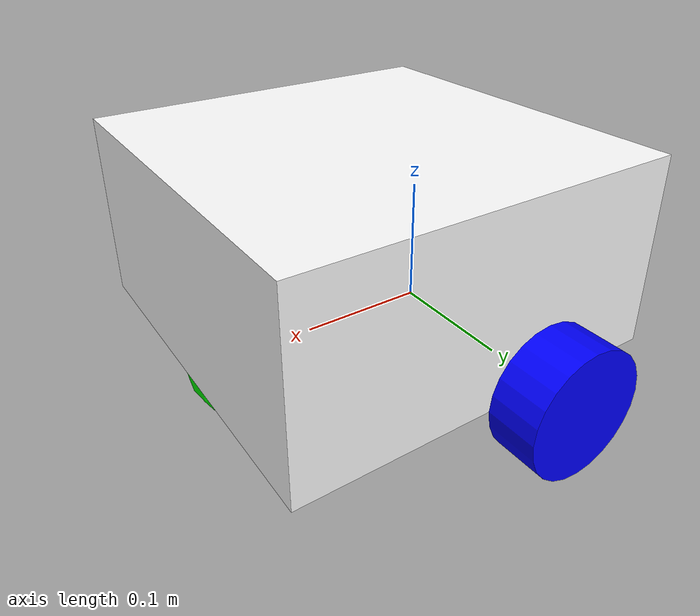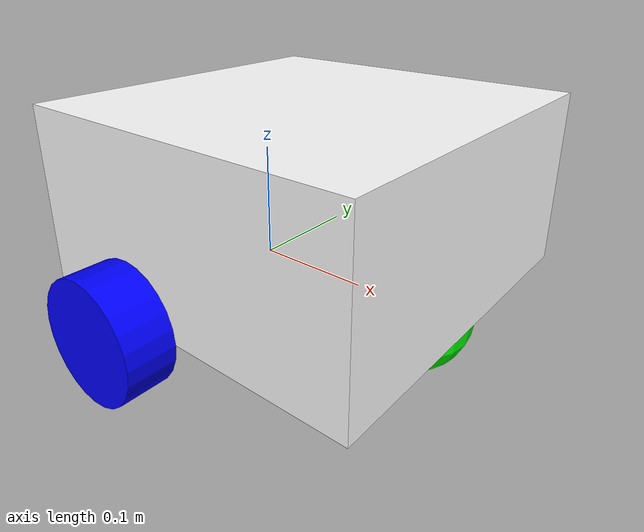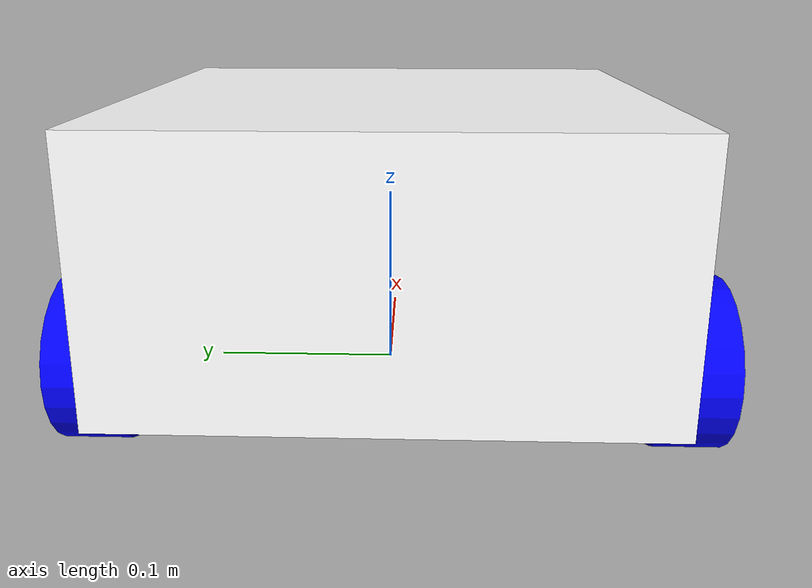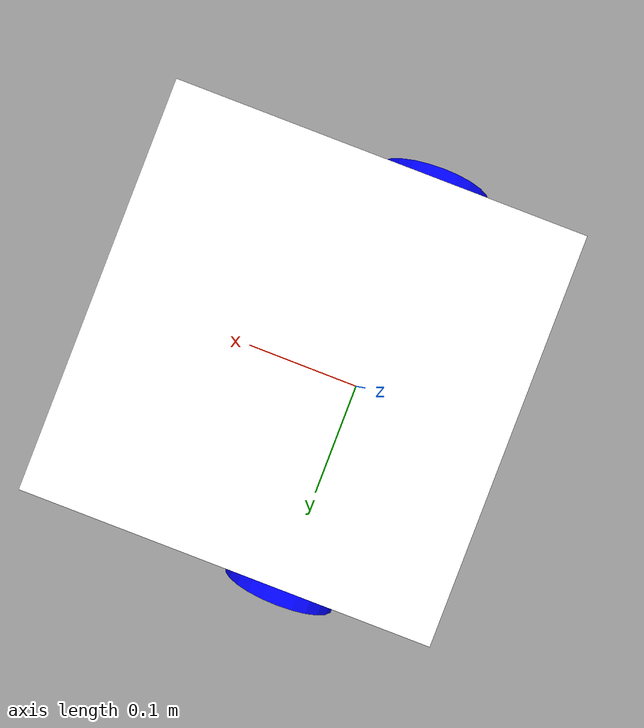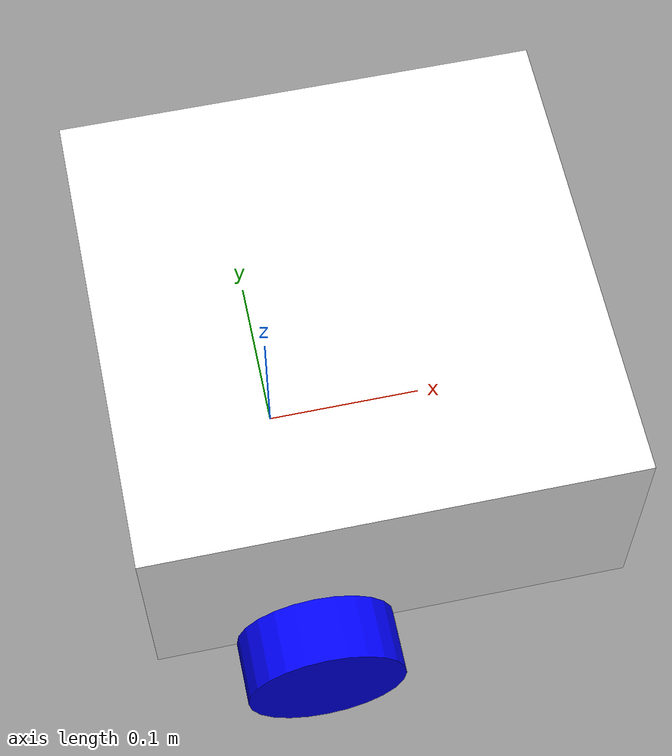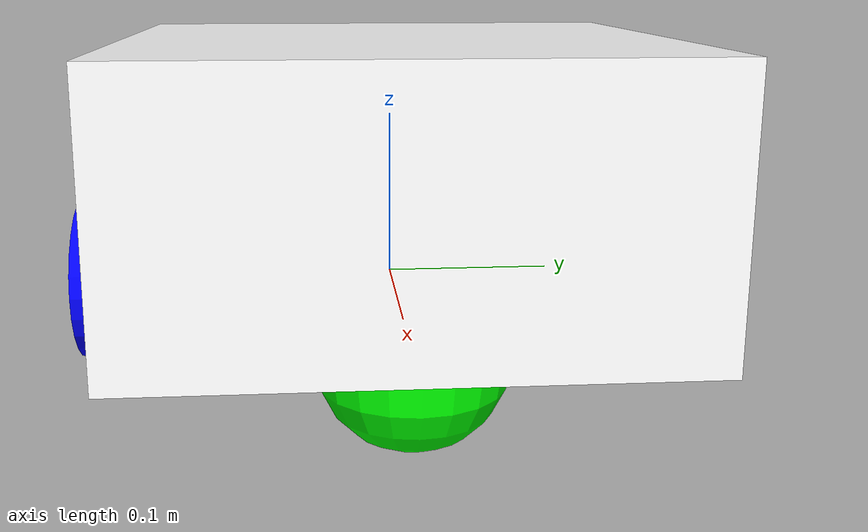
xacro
<?xml version="1.0"?>
<robot xmlns:xacro="http://www.ros.org/wiki/xacro">

    <!-- MACROS -->

    <xacro:include filename="material_macros.xacro"/>
    <xacro:include filename="inertial_macros.xacro"/>

    <!-- BASE -->

    <!-- used for center of rotation of wheels -->
    <link name="base_link"></link>

    <!-- CHASSIS -->

    <joint name="chassis_joint" type="fixed">
        <parent link="base_link"/>
        <child link="chassis"/>
        <origin xyz='-0.1 0 0'/> <!-- chassis set just behind base_link-->
    </joint>

    <xacro:property name="body_x" value="0.3"/>
    <xacro:property name="body_y" value="0.3"/>
    <xacro:property name="body_z" value="0.15"/>
    <link name="chassis">
        <visual>
            <origin xyz="${body_x/2} 0 ${body_z/2}"/> <!-- place chassis at bottom back of visual-->
            <geometry>
                <box size="${body_x} ${body_y} ${body_z}"/>
            </geometry>
            <material name="white"/>
        </visual>
        <collision>
            <origin xyz="${body_x/2} 0 ${body_z/2}"/>
            <geometry>
                <box size="${body_x} ${body_y} ${body_z}"/>
            </geometry>
        </collision>
        <xacro:inertial_box mass="0.5" x="${body_x}" y="${body_y}" z="${body_z}">
            <origin xyz="${body_x/2} 0 ${body_z/2}" rpy="0 0 0"/> <!-- same as visual.origin-->
        </xacro:inertial_box>
    </link>

    <!-- WHEELS -->

    <xacro:property name="wheel_length" value="0.04"/>
    <xacro:property name="wheel_radius" value="0.05"/>

    <!-- LEFT WHEEL -->

    <joint name="left_wheel_joint" type="continuous">
        <parent link="base_link"/>
        <child link="left_wheel"/>
        <origin xyz="0 ${body_y/2 + wheel_length/2} 0" rpy="-${pi/2} 0 0"/> <!-- by default ros cylinders are along vertical z point out, rotate sideways along -x-->
        <axis xyz="0 0 1"/> <!-- rotate forward around +z-->
    </joint>

    <link name="left_wheel">
        <visual>
            <geometry>
                <cylinder radius="${wheel_radius}" length="${wheel_length}"/>
            </geometry>
            <material name="blue"/>
        </visual>
        <collision>
            <geometry>
                <cylinder radius="${wheel_radius}" length="${wheel_length}"/>
            </geometry>
        </collision>
        <xacro:inertial_cylinder mass="0.1" radius="${wheel_radius}" length="${wheel_length}">
            <origin xyz="0 0 0" rpy="0 0 0"/>
        </xacro:inertial_cylinder>
    </link>

    <!-- RIGHT WHEEL -->

    <joint name="right_wheel_joint" type="continuous">
        <parent link="base_link"/>
        <child link="right_wheel"/>
        <origin xyz="0 -${body_y/2 + wheel_length/2} 0" rpy="${pi/2} 0 0"/> <!-- by default ros cylinders are along vertical z point out, rotate sideways along +x-->
        <axis xyz="0 0 -1"/> <!-- rotate forward around +z-->
    </joint>

    <link name="right_wheel">
        <visual>
            <geometry>
                <cylinder radius="${wheel_radius}" length="${wheel_length}"/>
            </geometry>
            <material name="blue"/>
        </visual>
        <collision>
            <geometry>
                <cylinder radius="${wheel_radius}" length="${wheel_length}"/>
            </geometry>
        </collision>
        <xacro:inertial_cylinder mass="0.1" radius="${wheel_radius}" length="${wheel_length}">
            <origin xyz="0 0 0" rpy="0 0 0"/>
        </xacro:inertial_cylinder>
    </link>

    <!-- CASTER WHEEL (frictionless hemisphere) -->

    <xacro:property name="caster_radius" value="${wheel_radius}"/>

    <joint name="caster_wheel_joint" type="fixed">
        <parent link="chassis"/>
        <child link="caster_wheel"/>
        <origin xyz="${body_x - caster_radius} 0 0"/>
    </joint>

    <link name="caster_wheel">
        <visual>
            <geometry>
                <sphere radius="${caster_radius}"/>
            </geometry>
            <material name="green"/>
        </visual>
        <collision>
            <geometry>
                <sphere radius="${caster_radius}"/>
            </geometry>
        </collision>
        <xacro:inertial_sphere mass="0.1" radius="${caster_radius}">
            <origin xyz="0 0 0" rpy="0 0 0"/>
        </xacro:inertial_sphere>
    </link>

</robot>

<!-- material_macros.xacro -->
<robot xmlns:xacro="http://www.ros.org/wiki/xacro">

    <!-- this holds robot materials -->

    <material name="white">
        <color rgba="1 1 1 1"/>
    </material>
    <material name="red">
        <color rgba="1 0 0 1"/>
    </material>
    <material name="green">
        <color rgba="0 1 0 1"/>
    </material>
    <material name="blue">
        <color rgba="0 0 1 1"/>
    </material>

</robot>

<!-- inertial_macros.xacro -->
<robot xmlns:xacro="http://www.ros.org/wiki/xacro" >

    <!-- Specify some standard inertial calculations https://en.wikipedia.org/wiki/List_of_moments_of_inertia -->
    <!-- These make use of xacro's mathematical functionality -->

    <xacro:macro name="inertial_sphere" params="mass radius *origin">
        <inertial>
            <xacro:insert_block name="origin"/>
            <mass value="${mass}" />
            <inertia ixx="${(2/5) * mass * (radius*radius)}" ixy="0.0" ixz="0.0"
                    iyy="${(2/5) * mass * (radius*radius)}" iyz="0.0"
                    izz="${(2/5) * mass * (radius*radius)}" />
        </inertial>
    </xacro:macro>

    <xacro:macro name="inertial_box" params="mass x y z *origin">
        <inertial>
            <xacro:insert_block name="origin"/>
            <mass value="${mass}" />
            <inertia ixx="${(1/12) * mass * (y*y+z*z)}" ixy="0.0" ixz="0.0"
                    iyy="${(1/12) * mass * (x*x+z*z)}" iyz="0.0"
                    izz="${(1/12) * mass * (x*x+y*y)}" />
        </inertial>
    </xacro:macro>

    <xacro:macro name="inertial_cylinder" params="mass radius length *origin">
        <inertial>
            <xacro:insert_block name="origin"/>
            <mass value="${mass}" />
            <inertia ixx="${(1/12) * mass * (3*radius*radius + length*length)}" ixy="0.0" ixz="0.0"
                    iyy="${(1/12) * mass * (3*radius*radius + length*length)}" iyz="0.0"
                    izz="${(1/2) * mass * (radius*radius)}" />
        </inertial>
    </xacro:macro>

</robot>
